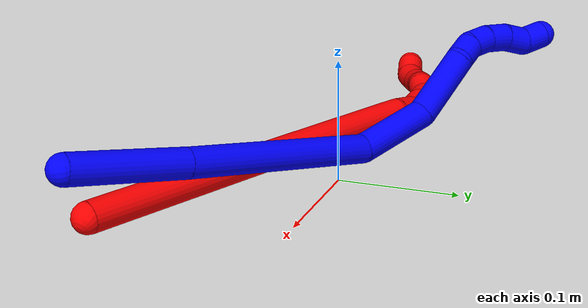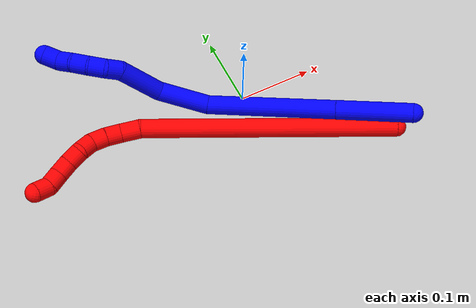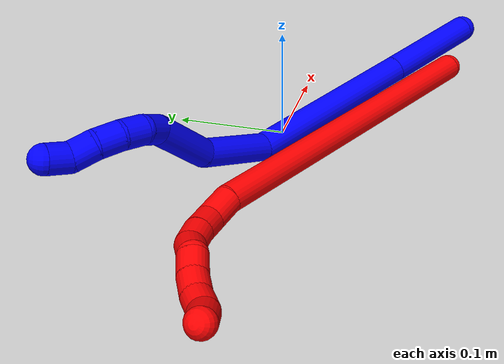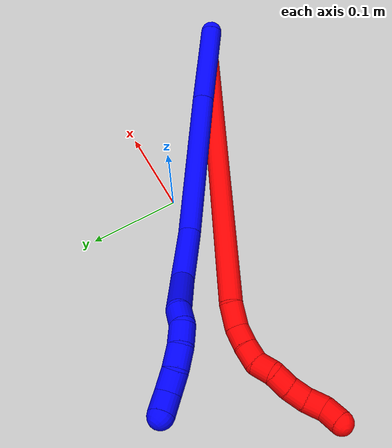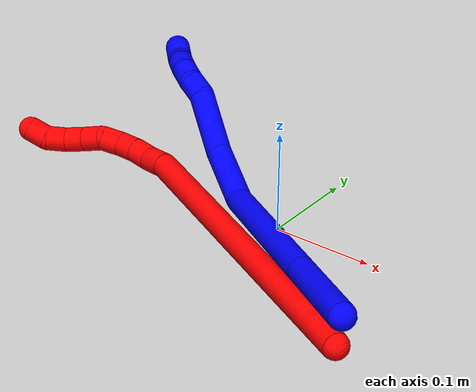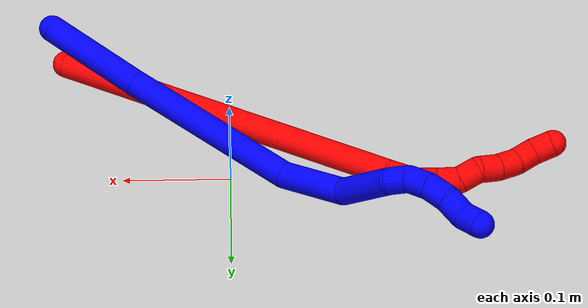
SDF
<sdf version="1.7">
 <world name="default">
  <model name="1">
   <static>0</static>
   <link name="1">
    <collision name="collision-cylinder-e_1_1_4">
     <pose>-0.027494 -0.000621 -0.040158 3.12613 -0.600292 -3.09164</pose>
     <geometry><cylinder><radius>0.0125</radius><length>0.097345</length></cylinder></geometry>
     <surface>
      <friction><ode><mu>1.16</mu><mu2>1.16</mu2><slip1>0</slip1><slip2>0</slip2></ode></friction>
      <contact><ode><kp>1e+06</kp><kd>1</kd><max_vel>0</max_vel><min_depth>0.001</min_depth></ode></contact>
     </surface>
    </collision>
    <visual name="visual-cylinder-e_1_1_4">
     <pose>-0.027494 -0.000621 -0.040158 3.12613 -0.600292 -3.09164</pose>
     <geometry><cylinder><radius>0.0125</radius><length>0.097345</length></cylinder></geometry>
     <material><ambient>0 0 1 1</ambient></material>
    </visual>
    <collision name="collision-cylinder-e_2_4_5">
     <pose>-0.103115 -1.5e-05 -0.149817 -3.12394 -0.605572 3.0851</pose>
     <geometry><cylinder><radius>0.0125</radius><length>0.169092</length></cylinder></geometry>
     <surface>
      <friction><ode><mu>1.16</mu><mu2>1.16</mu2><slip1>0</slip1><slip2>0</slip2></ode></friction>
      <contact><ode><kp>1e+06</kp><kd>1</kd><max_vel>0</max_vel><min_depth>0.001</min_depth></ode></contact>
     </surface>
    </collision>
    <visual name="visual-cylinder-e_2_4_5">
     <pose>-0.103115 -1.5e-05 -0.149817 -3.12394 -0.605572 3.0851</pose>
     <geometry><cylinder><radius>0.0125</radius><length>0.169092</length></cylinder></geometry>
     <material><ambient>0 0 1 1</ambient></material>
    </visual>
    <collision name="collision-cylinder-e_3_5_6">
     <pose>-0.163184 0.014 -0.248383 -2.7271 -0.359735 1.42603</pose>
     <geometry><cylinder><radius>0.0125</radius><length>0.06785</length></cylinder></geometry>
     <surface>
      <friction><ode><mu>1.16</mu><mu2>1.16</mu2><slip1>0</slip1><slip2>0</slip2></ode></friction>
      <contact><ode><kp>1e+06</kp><kd>1</kd><max_vel>0</max_vel><min_depth>0.001</min_depth></ode></contact>
     </surface>
    </collision>
    <visual name="visual-cylinder-e_3_5_6">
     <pose>-0.163184 0.014 -0.248383 -2.7271 -0.359735 1.42603</pose>
     <geometry><cylinder><radius>0.0125</radius><length>0.06785</length></cylinder></geometry>
     <material><ambient>0 0 1 1</ambient></material>
    </visual>
    <collision name="collision-cylinder-e_4_6_7">
     <pose>-0.17819 0.048775 -0.299094 -2.34836 -0.098973 0.235421</pose>
     <geometry><cylinder><radius>0.0125</radius><length>0.062012</length></cylinder></geometry>
     <surface>
      <friction><ode><mu>1.16</mu><mu2>1.16</mu2><slip1>0</slip1><slip2>0</slip2></ode></friction>
      <contact><ode><kp>1e+06</kp><kd>1</kd><max_vel>0</max_vel><min_depth>0.001</min_depth></ode></contact>
     </surface>
    </collision>
    <visual name="visual-cylinder-e_4_6_7">
     <pose>-0.17819 0.048775 -0.299094 -2.34836 -0.098973 0.235421</pose>
     <geometry><cylinder><radius>0.0125</radius><length>0.062012</length></cylinder></geometry>
     <material><ambient>0 0 1 1</ambient></material>
    </visual>
    <collision name="collision-cylinder-e_5_7_8">
     <pose>-0.185678 0.077115 -0.327224 -2.36643 -0.453462 1.02875</pose>
     <geometry><cylinder><radius>0.0125</radius><length>0.020196</length></cylinder></geometry>
     <surface>
      <friction><ode><mu>1.16</mu><mu2>1.16</mu2><slip1>0</slip1><slip2>0</slip2></ode></friction>
      <contact><ode><kp>1e+06</kp><kd>1</kd><max_vel>0</max_vel><min_depth>0.001</min_depth></ode></contact>
     </surface>
    </collision>
    <visual name="visual-cylinder-e_5_7_8">
     <pose>-0.185678 0.077115 -0.327224 -2.36643 -0.453462 1.02875</pose>
     <geometry><cylinder><radius>0.0125</radius><length>0.020196</length></cylinder></geometry>
     <material><ambient>0 0 1 1</ambient></material>
    </visual>
    <collision name="collision-cylinder-e_6_8_9">
     <pose>-0.194793 0.086236 -0.342417 -2.83385 -0.47427 2.00051</pose>
     <geometry><cylinder><radius>0.0125</radius><length>0.020546</length></cylinder></geometry>
     <surface>
      <friction><ode><mu>1.16</mu><mu2>1.16</mu2><slip1>0</slip1><slip2>0</slip2></ode></friction>
      <contact><ode><kp>1e+06</kp><kd>1</kd><max_vel>0</max_vel><min_depth>0.001</min_depth></ode></contact>
     </surface>
    </collision>
    <visual name="visual-cylinder-e_6_8_9">
     <pose>-0.194793 0.086236 -0.342417 -2.83385 -0.47427 2.00051</pose>
     <geometry><cylinder><radius>0.0125</radius><length>0.020546</length></cylinder></geometry>
     <material><ambient>0 0 1 1</ambient></material>
    </visual>
    <collision name="collision-cylinder-e_7_9_10">
     <pose>-0.204243 0.089437 -0.36063 -3.0961 -0.463833 2.9495</pose>
     <geometry><cylinder><radius>0.0125</radius><length>0.021275</length></cylinder></geometry>
     <surface>
      <friction><ode><mu>1.16</mu><mu2>1.16</mu2><slip1>0</slip1><slip2>0</slip2></ode></friction>
      <contact><ode><kp>1e+06</kp><kd>1</kd><max_vel>0</max_vel><min_depth>0.001</min_depth></ode></contact>
     </surface>
    </collision>
    <visual name="visual-cylinder-e_7_9_10">
     <pose>-0.204243 0.089437 -0.36063 -3.0961 -0.463833 2.9495</pose>
     <geometry><cylinder><radius>0.0125</radius><length>0.021275</length></cylinder></geometry>
     <material><ambient>0 0 1 1</ambient></material>
    </visual>
    <collision name="collision-cylinder-e_8_10_11">
     <pose>-0.213751 0.087593 -0.379315 2.89847 -0.465323 -2.18955</pose>
     <geometry><cylinder><radius>0.0125</radius><length>0.021168</length></cylinder></geometry>
     <surface>
      <friction><ode><mu>1.16</mu><mu2>1.16</mu2><slip1>0</slip1><slip2>0</slip2></ode></friction>
      <contact><ode><kp>1e+06</kp><kd>1</kd><max_vel>0</max_vel><min_depth>0.001</min_depth></ode></contact>
     </surface>
    </collision>
    <visual name="visual-cylinder-e_8_10_11">
     <pose>-0.213751 0.087593 -0.379315 2.89847 -0.465323 -2.18955</pose>
     <geometry><cylinder><radius>0.0125</radius><length>0.021168</length></cylinder></geometry>
     <material><ambient>0 0 1 1</ambient></material>
    </visual>
    <collision name="collision-cylinder-e_9_11_2">
     <pose>-0.221217 0.087834 -0.398061 -2.88418 -0.267983 1.61148</pose>
     <geometry><cylinder><radius>0.0125</radius><length>0.020516</length></cylinder></geometry>
     <surface>
      <friction><ode><mu>1.16</mu><mu2>1.16</mu2><slip1>0</slip1><slip2>0</slip2></ode></friction>
      <contact><ode><kp>1e+06</kp><kd>1</kd><max_vel>0</max_vel><min_depth>0.001</min_depth></ode></contact>
     </surface>
    </collision>
    <visual name="visual-cylinder-e_9_11_2">
     <pose>-0.221217 0.087834 -0.398061 -2.88418 -0.267983 1.61148</pose>
     <geometry><cylinder><radius>0.0125</radius><length>0.020516</length></cylinder></geometry>
     <material><ambient>0 0 1 1</ambient></material>
    </visual>
    <collision name="collision-sphere-2">
     <pose>-0.223933 0.090352 -0.407627 0 -0 0</pose>
     <geometry><sphere><radius>0.0125</radius></sphere></geometry>
     <surface>
      <friction><ode><mu>1.16</mu><mu2>1.16</mu2><slip1>0</slip1><slip2>0</slip2></ode></friction>
      <contact><ode><kp>1e+06</kp><kd>1</kd><max_vel>0</max_vel><min_depth>0.001</min_depth></ode></contact>
     </surface>
    </collision>
    <visual name="visual-sphere-2">
     <pose>-0.223933 0.090352 -0.407627 0 -0 0</pose>
     <geometry><sphere><radius>0.0125</radius></sphere></geometry>
     <material><ambient>0 0 1 1</ambient></material>
    </visual>
    <collision name="collision-sphere-11">
     <pose>-0.2185 0.085316 -0.388495 0 -0 0</pose>
     <geometry><sphere><radius>0.0125</radius></sphere></geometry>
     <surface>
      <friction><ode><mu>1.16</mu><mu2>1.16</mu2><slip1>0</slip1><slip2>0</slip2></ode></friction>
      <contact><ode><kp>1e+06</kp><kd>1</kd><max_vel>0</max_vel><min_depth>0.001</min_depth></ode></contact>
     </surface>
    </collision>
    <visual name="visual-sphere-11">
     <pose>-0.2185 0.085316 -0.388495 0 -0 0</pose>
     <geometry><sphere><radius>0.0125</radius></sphere></geometry>
     <material><ambient>0 0 1 1</ambient></material>
    </visual>
    <collision name="collision-sphere-10">
     <pose>-0.209002 0.08987 -0.370134 0 -0 0</pose>
     <geometry><sphere><radius>0.0125</radius></sphere></geometry>
     <surface>
      <friction><ode><mu>1.16</mu><mu2>1.16</mu2><slip1>0</slip1><slip2>0</slip2></ode></friction>
      <contact><ode><kp>1e+06</kp><kd>1</kd><max_vel>0</max_vel><min_depth>0.001</min_depth></ode></contact>
     </surface>
    </collision>
    <visual name="visual-sphere-10">
     <pose>-0.209002 0.08987 -0.370134 0 -0 0</pose>
     <geometry><sphere><radius>0.0125</radius></sphere></geometry>
     <material><ambient>0 0 1 1</ambient></material>
    </visual>
    <collision name="collision-sphere-9">
     <pose>-0.199484 0.089005 -0.351127 0 -0 0</pose>
     <geometry><sphere><radius>0.0125</radius></sphere></geometry>
     <surface>
      <friction><ode><mu>1.16</mu><mu2>1.16</mu2><slip1>0</slip1><slip2>0</slip2></ode></friction>
      <contact><ode><kp>1e+06</kp><kd>1</kd><max_vel>0</max_vel><min_depth>0.001</min_depth></ode></contact>
     </surface>
    </collision>
    <visual name="visual-sphere-9">
     <pose>-0.199484 0.089005 -0.351127 0 -0 0</pose>
     <geometry><sphere><radius>0.0125</radius></sphere></geometry>
     <material><ambient>0 0 1 1</ambient></material>
    </visual>
    <collision name="collision-sphere-4">
     <pose>-0.054988 -0.001242 -0.080316 0 -0 0</pose>
     <geometry><sphere><radius>0.0125</radius></sphere></geometry>
     <surface>
      <friction><ode><mu>1.16</mu><mu2>1.16</mu2><slip1>0</slip1><slip2>0</slip2></ode></friction>
      <contact><ode><kp>1e+06</kp><kd>1</kd><max_vel>0</max_vel><min_depth>0.001</min_depth></ode></contact>
     </surface>
    </collision>
    <visual name="visual-sphere-4">
     <pose>-0.054988 -0.001242 -0.080316 0 -0 0</pose>
     <geometry><sphere><radius>0.0125</radius></sphere></geometry>
     <material><ambient>0 0 1 1</ambient></material>
    </visual>
    <collision name="collision-sphere-1">
     <geometry><sphere><radius>0.0125</radius></sphere></geometry>
     <surface>
      <friction><ode><mu>1.16</mu><mu2>1.16</mu2><slip1>0</slip1><slip2>0</slip2></ode></friction>
      <contact><ode><kp>1e+06</kp><kd>1</kd><max_vel>0</max_vel><min_depth>0.001</min_depth></ode></contact>
     </surface>
    </collision>
    <visual name="visual-sphere-1">
     <geometry><sphere><radius>0.0125</radius></sphere></geometry>
     <material><ambient>0 0 1 1</ambient></material>
    </visual>
    <collision name="collision-sphere-8">
     <pose>-0.190101 0.083468 -0.333708 0 -0 0</pose>
     <geometry><sphere><radius>0.0125</radius></sphere></geometry>
     <surface>
      <friction><ode><mu>1.16</mu><mu2>1.16</mu2><slip1>0</slip1><slip2>0</slip2></ode></friction>
      <contact><ode><kp>1e+06</kp><kd>1</kd><max_vel>0</max_vel><min_depth>0.001</min_depth></ode></contact>
     </surface>
    </collision>
    <visual name="visual-sphere-8">
     <pose>-0.190101 0.083468 -0.333708 0 -0 0</pose>
     <geometry><sphere><radius>0.0125</radius></sphere></geometry>
     <material><ambient>0 0 1 1</ambient></material>
    </visual>
    <collision name="collision-sphere-5">
     <pose>-0.151241 0.001212 -0.219319 0 -0 0</pose>
     <geometry><sphere><radius>0.0125</radius></sphere></geometry>
     <surface>
      <friction><ode><mu>1.16</mu><mu2>1.16</mu2><slip1>0</slip1><slip2>0</slip2></ode></friction>
      <contact><ode><kp>1e+06</kp><kd>1</kd><max_vel>0</max_vel><min_depth>0.001</min_depth></ode></contact>
     </surface>
    </collision>
    <visual name="visual-sphere-5">
     <pose>-0.151241 0.001212 -0.219319 0 -0 0</pose>
     <geometry><sphere><radius>0.0125</radius></sphere></geometry>
     <material><ambient>0 0 1 1</ambient></material>
    </visual>
    <collision name="collision-sphere-6">
     <pose>-0.175126 0.026788 -0.277448 0 -0 0</pose>
     <geometry><sphere><radius>0.0125</radius></sphere></geometry>
     <surface>
      <friction><ode><mu>1.16</mu><mu2>1.16</mu2><slip1>0</slip1><slip2>0</slip2></ode></friction>
      <contact><ode><kp>1e+06</kp><kd>1</kd><max_vel>0</max_vel><min_depth>0.001</min_depth></ode></contact>
     </surface>
    </collision>
    <visual name="visual-sphere-6">
     <pose>-0.175126 0.026788 -0.277448 0 -0 0</pose>
     <geometry><sphere><radius>0.0125</radius></sphere></geometry>
     <material><ambient>0 0 1 1</ambient></material>
    </visual>
    <collision name="collision-sphere-7">
     <pose>-0.181254 0.070763 -0.32074 0 -0 0</pose>
     <geometry><sphere><radius>0.0125</radius></sphere></geometry>
     <surface>
      <friction><ode><mu>1.16</mu><mu2>1.16</mu2><slip1>0</slip1><slip2>0</slip2></ode></friction>
      <contact><ode><kp>1e+06</kp><kd>1</kd><max_vel>0</max_vel><min_depth>0.001</min_depth></ode></contact>
     </surface>
    </collision>
    <visual name="visual-sphere-7">
     <pose>-0.181254 0.070763 -0.32074 0 -0 0</pose>
     <geometry><sphere><radius>0.0125</radius></sphere></geometry>
     <material><ambient>0 0 1 1</ambient></material>
    </visual>
    <inertial>
     <pose>-0.12679 0.025599 -0.204309 0 -0 0</pose>
     <mass>0.5</mass>
     <inertia>
      <ixx>-0.000347</ixx>
      <ixy>0</ixy>
      <ixz>0</ixz>
      <iyy>0.000536</iyy>
      <iyz>0</iyz>
      <izz>0.000229</izz>
     </inertia>
    </inertial>
   </link>
   <pose>0.166823 -0.145708 0.050951 1.73412 -0.495328 0.352187</pose>
  </model>
  <model name="2">
   <static>0</static>
   <link name="2">
    <collision name="collision-cylinder-e_1_1_4">
     <pose>-0.080131 0.049576 0.136875 -0.347501 -0.503177 0.090169</pose>
     <geometry><cylinder><radius>0.0125</radius><length>0.332347</length></cylinder></geometry>
     <surface>
      <friction><ode><mu>1.16</mu><mu2>1.16</mu2><slip1>0</slip1><slip2>0</slip2></ode></friction>
      <contact><ode><kp>1e+06</kp><kd>1</kd><max_vel>0</max_vel><min_depth>0.001</min_depth></ode></contact>
     </surface>
    </collision>
    <visual name="visual-cylinder-e_1_1_4">
     <pose>-0.080131 0.049576 0.136875 -0.347501 -0.503177 0.090169</pose>
     <geometry><cylinder><radius>0.0125</radius><length>0.332347</length></cylinder></geometry>
     <material><ambient>1 0 0 1</ambient></material>
    </visual>
    <collision name="collision-cylinder-e_2_4_5">
     <pose>-0.16881 0.101143 0.283802 -0.195548 -0.695318 0.071059</pose>
     <geometry><cylinder><radius>0.0125</radius><length>0.026689</length></cylinder></geometry>
     <surface>
      <friction><ode><mu>1.16</mu><mu2>1.16</mu2><slip1>0</slip1><slip2>0</slip2></ode></friction>
      <contact><ode><kp>1e+06</kp><kd>1</kd><max_vel>0</max_vel><min_depth>0.001</min_depth></ode></contact>
     </surface>
    </collision>
    <visual name="visual-cylinder-e_2_4_5">
     <pose>-0.16881 0.101143 0.283802 -0.195548 -0.695318 0.071059</pose>
     <geometry><cylinder><radius>0.0125</radius><length>0.026689</length></cylinder></geometry>
     <material><ambient>1 0 0 1</ambient></material>
    </visual>
    <collision name="collision-cylinder-e_3_5_6">
     <pose>-0.181832 0.102731 0.303229 0.043017 -0.444792 -0.009729</pose>
     <geometry><cylinder><radius>0.0125</radius><length>0.020793</length></cylinder></geometry>
     <surface>
      <friction><ode><mu>1.16</mu><mu2>1.16</mu2><slip1>0</slip1><slip2>0</slip2></ode></friction>
      <contact><ode><kp>1e+06</kp><kd>1</kd><max_vel>0</max_vel><min_depth>0.001</min_depth></ode></contact>
     </surface>
    </collision>
    <visual name="visual-cylinder-e_3_5_6">
     <pose>-0.181832 0.102731 0.303229 0.043017 -0.444792 -0.009729</pose>
     <geometry><cylinder><radius>0.0125</radius><length>0.020793</length></cylinder></geometry>
     <material><ambient>1 0 0 1</ambient></material>
    </visual>
    <collision name="collision-cylinder-e_4_6_7">
     <pose>-0.191164 0.100769 0.321298 0.177381 -0.502972 -0.045686</pose>
     <geometry><cylinder><radius>0.0125</radius><length>0.020157</length></cylinder></geometry>
     <surface>
      <friction><ode><mu>1.16</mu><mu2>1.16</mu2><slip1>0</slip1><slip2>0</slip2></ode></friction>
      <contact><ode><kp>1e+06</kp><kd>1</kd><max_vel>0</max_vel><min_depth>0.001</min_depth></ode></contact>
     </surface>
    </collision>
    <visual name="visual-cylinder-e_4_6_7">
     <pose>-0.191164 0.100769 0.321298 0.177381 -0.502972 -0.045686</pose>
     <geometry><cylinder><radius>0.0125</radius><length>0.020157</length></cylinder></geometry>
     <material><ambient>1 0 0 1</ambient></material>
    </visual>
    <collision name="collision-cylinder-e_5_7_8">
     <pose>-0.198281 0.093737 0.338049 0.596606 -0.22788 -0.070344</pose>
     <geometry><cylinder><radius>0.0125</radius><length>0.020003</length></cylinder></geometry>
     <surface>
      <friction><ode><mu>1.16</mu><mu2>1.16</mu2><slip1>0</slip1><slip2>0</slip2></ode></friction>
      <contact><ode><kp>1e+06</kp><kd>1</kd><max_vel>0</max_vel><min_depth>0.001</min_depth></ode></contact>
     </surface>
    </collision>
    <visual name="visual-cylinder-e_5_7_8">
     <pose>-0.198281 0.093737 0.338049 0.596606 -0.22788 -0.070344</pose>
     <geometry><cylinder><radius>0.0125</radius><length>0.020003</length></cylinder></geometry>
     <material><ambient>1 0 0 1</ambient></material>
    </visual>
    <collision name="collision-cylinder-e_6_8_9">
     <pose>-0.207145 0.083949 0.35226 0.611589 -0.721109 -0.236943</pose>
     <geometry><cylinder><radius>0.0125</radius><length>0.020006</length></cylinder></geometry>
     <surface>
      <friction><ode><mu>1.16</mu><mu2>1.16</mu2><slip1>0</slip1><slip2>0</slip2></ode></friction>
      <contact><ode><kp>1e+06</kp><kd>1</kd><max_vel>0</max_vel><min_depth>0.001</min_depth></ode></contact>
     </surface>
    </collision>
    <visual name="visual-cylinder-e_6_8_9">
     <pose>-0.207145 0.083949 0.35226 0.611589 -0.721109 -0.236943</pose>
     <geometry><cylinder><radius>0.0125</radius><length>0.020006</length></cylinder></geometry>
     <material><ambient>1 0 0 1</ambient></material>
    </visual>
    <collision name="collision-cylinder-e_7_9_10">
     <pose>-0.219209 0.073955 0.364573 0.744793 -0.577413 -0.231001</pose>
     <geometry><cylinder><radius>0.0125</radius><length>0.020003</length></cylinder></geometry>
     <surface>
      <friction><ode><mu>1.16</mu><mu2>1.16</mu2><slip1>0</slip1><slip2>0</slip2></ode></friction>
      <contact><ode><kp>1e+06</kp><kd>1</kd><max_vel>0</max_vel><min_depth>0.001</min_depth></ode></contact>
     </surface>
    </collision>
    <visual name="visual-cylinder-e_7_9_10">
     <pose>-0.219209 0.073955 0.364573 0.744793 -0.577413 -0.231001</pose>
     <geometry><cylinder><radius>0.0125</radius><length>0.020003</length></cylinder></geometry>
     <material><ambient>1 0 0 1</ambient></material>
    </visual>
    <collision name="collision-cylinder-e_8_10_11">
     <pose>-0.228115 0.06157 0.377305 0.79552 -0.3519 -0.149121</pose>
     <geometry><cylinder><radius>0.0125</radius><length>0.020001</length></cylinder></geometry>
     <surface>
      <friction><ode><mu>1.16</mu><mu2>1.16</mu2><slip1>0</slip1><slip2>0</slip2></ode></friction>
      <contact><ode><kp>1e+06</kp><kd>1</kd><max_vel>0</max_vel><min_depth>0.001</min_depth></ode></contact>
     </surface>
    </collision>
    <visual name="visual-cylinder-e_8_10_11">
     <pose>-0.228115 0.06157 0.377305 0.79552 -0.3519 -0.149121</pose>
     <geometry><cylinder><radius>0.0125</radius><length>0.020001</length></cylinder></geometry>
     <material><ambient>1 0 0 1</ambient></material>
    </visual>
    <collision name="collision-cylinder-e_9_11_2">
     <pose>-0.233392 0.051394 0.393074 0.360798 -0.183963 -0.033643</pose>
     <geometry><cylinder><radius>0.0125</radius><length>0.020001</length></cylinder></geometry>
     <surface>
      <friction><ode><mu>1.16</mu><mu2>1.16</mu2><slip1>0</slip1><slip2>0</slip2></ode></friction>
      <contact><ode><kp>1e+06</kp><kd>1</kd><max_vel>0</max_vel><min_depth>0.001</min_depth></ode></contact>
     </surface>
    </collision>
    <visual name="visual-cylinder-e_9_11_2">
     <pose>-0.233392 0.051394 0.393074 0.360798 -0.183963 -0.033643</pose>
     <geometry><cylinder><radius>0.0125</radius><length>0.020001</length></cylinder></geometry>
     <material><ambient>1 0 0 1</ambient></material>
    </visual>
    <collision name="collision-sphere-2">
     <pose>-0.235221 0.047923 0.402272 0 -0 0</pose>
     <geometry><sphere><radius>0.0125</radius></sphere></geometry>
     <surface>
      <friction><ode><mu>1.16</mu><mu2>1.16</mu2><slip1>0</slip1><slip2>0</slip2></ode></friction>
      <contact><ode><kp>1e+06</kp><kd>1</kd><max_vel>0</max_vel><min_depth>0.001</min_depth></ode></contact>
     </surface>
    </collision>
    <visual name="visual-sphere-2">
     <pose>-0.235221 0.047923 0.402272 0 -0 0</pose>
     <geometry><sphere><radius>0.0125</radius></sphere></geometry>
     <material><ambient>1 0 0 1</ambient></material>
    </visual>
    <collision name="collision-sphere-11">
     <pose>-0.231562 0.054865 0.383875 0 -0 0</pose>
     <geometry><sphere><radius>0.0125</radius></sphere></geometry>
     <surface>
      <friction><ode><mu>1.16</mu><mu2>1.16</mu2><slip1>0</slip1><slip2>0</slip2></ode></friction>
      <contact><ode><kp>1e+06</kp><kd>1</kd><max_vel>0</max_vel><min_depth>0.001</min_depth></ode></contact>
     </surface>
    </collision>
    <visual name="visual-sphere-11">
     <pose>-0.231562 0.054865 0.383875 0 -0 0</pose>
     <geometry><sphere><radius>0.0125</radius></sphere></geometry>
     <material><ambient>1 0 0 1</ambient></material>
    </visual>
    <collision name="collision-sphere-10">
     <pose>-0.224668 0.068275 0.370734 0 -0 0</pose>
     <geometry><sphere><radius>0.0125</radius></sphere></geometry>
     <surface>
      <friction><ode><mu>1.16</mu><mu2>1.16</mu2><slip1>0</slip1><slip2>0</slip2></ode></friction>
      <contact><ode><kp>1e+06</kp><kd>1</kd><max_vel>0</max_vel><min_depth>0.001</min_depth></ode></contact>
     </surface>
    </collision>
    <visual name="visual-sphere-10">
     <pose>-0.224668 0.068275 0.370734 0 -0 0</pose>
     <geometry><sphere><radius>0.0125</radius></sphere></geometry>
     <material><ambient>1 0 0 1</ambient></material>
    </visual>
    <collision name="collision-sphere-9">
     <pose>-0.213749 0.079635 0.358412 0 -0 0</pose>
     <geometry><sphere><radius>0.0125</radius></sphere></geometry>
     <surface>
      <friction><ode><mu>1.16</mu><mu2>1.16</mu2><slip1>0</slip1><slip2>0</slip2></ode></friction>
      <contact><ode><kp>1e+06</kp><kd>1</kd><max_vel>0</max_vel><min_depth>0.001</min_depth></ode></contact>
     </surface>
    </collision>
    <visual name="visual-sphere-9">
     <pose>-0.213749 0.079635 0.358412 0 -0 0</pose>
     <geometry><sphere><radius>0.0125</radius></sphere></geometry>
     <material><ambient>1 0 0 1</ambient></material>
    </visual>
    <collision name="collision-sphere-4">
     <pose>-0.160261 0.099152 0.273751 0 -0 0</pose>
     <geometry><sphere><radius>0.0125</radius></sphere></geometry>
     <surface>
      <friction><ode><mu>1.16</mu><mu2>1.16</mu2><slip1>0</slip1><slip2>0</slip2></ode></friction>
      <contact><ode><kp>1e+06</kp><kd>1</kd><max_vel>0</max_vel><min_depth>0.001</min_depth></ode></contact>
     </surface>
    </collision>
    <visual name="visual-sphere-4">
     <pose>-0.160261 0.099152 0.273751 0 -0 0</pose>
     <geometry><sphere><radius>0.0125</radius></sphere></geometry>
     <material><ambient>1 0 0 1</ambient></material>
    </visual>
    <collision name="collision-sphere-1">
     <geometry><sphere><radius>0.0125</radius></sphere></geometry>
     <surface>
      <friction><ode><mu>1.16</mu><mu2>1.16</mu2><slip1>0</slip1><slip2>0</slip2></ode></friction>
      <contact><ode><kp>1e+06</kp><kd>1</kd><max_vel>0</max_vel><min_depth>0.001</min_depth></ode></contact>
     </surface>
    </collision>
    <visual name="visual-sphere-1">
     <geometry><sphere><radius>0.0125</radius></sphere></geometry>
     <material><ambient>1 0 0 1</ambient></material>
    </visual>
    <collision name="collision-sphere-8">
     <pose>-0.200541 0.088263 0.346109 0 -0 0</pose>
     <geometry><sphere><radius>0.0125</radius></sphere></geometry>
     <surface>
      <friction><ode><mu>1.16</mu><mu2>1.16</mu2><slip1>0</slip1><slip2>0</slip2></ode></friction>
      <contact><ode><kp>1e+06</kp><kd>1</kd><max_vel>0</max_vel><min_depth>0.001</min_depth></ode></contact>
     </surface>
    </collision>
    <visual name="visual-sphere-8">
     <pose>-0.200541 0.088263 0.346109 0 -0 0</pose>
     <geometry><sphere><radius>0.0125</radius></sphere></geometry>
     <material><ambient>1 0 0 1</ambient></material>
    </visual>
    <collision name="collision-sphere-5">
     <pose>-0.177359 0.103134 0.293853 0 -0 0</pose>
     <geometry><sphere><radius>0.0125</radius></sphere></geometry>
     <surface>
      <friction><ode><mu>1.16</mu><mu2>1.16</mu2><slip1>0</slip1><slip2>0</slip2></ode></friction>
      <contact><ode><kp>1e+06</kp><kd>1</kd><max_vel>0</max_vel><min_depth>0.001</min_depth></ode></contact>
     </surface>
    </collision>
    <visual name="visual-sphere-5">
     <pose>-0.177359 0.103134 0.293853 0 -0 0</pose>
     <geometry><sphere><radius>0.0125</radius></sphere></geometry>
     <material><ambient>1 0 0 1</ambient></material>
    </visual>
    <collision name="collision-sphere-6">
     <pose>-0.186306 0.102327 0.312606 0 -0 0</pose>
     <geometry><sphere><radius>0.0125</radius></sphere></geometry>
     <surface>
      <friction><ode><mu>1.16</mu><mu2>1.16</mu2><slip1>0</slip1><slip2>0</slip2></ode></friction>
      <contact><ode><kp>1e+06</kp><kd>1</kd><max_vel>0</max_vel><min_depth>0.001</min_depth></ode></contact>
     </surface>
    </collision>
    <visual name="visual-sphere-6">
     <pose>-0.186306 0.102327 0.312606 0 -0 0</pose>
     <geometry><sphere><radius>0.0125</radius></sphere></geometry>
     <material><ambient>1 0 0 1</ambient></material>
    </visual>
    <collision name="collision-sphere-7">
     <pose>-0.196022 0.099211 0.329989 0 -0 0</pose>
     <geometry><sphere><radius>0.0125</radius></sphere></geometry>
     <surface>
      <friction><ode><mu>1.16</mu><mu2>1.16</mu2><slip1>0</slip1><slip2>0</slip2></ode></friction>
      <contact><ode><kp>1e+06</kp><kd>1</kd><max_vel>0</max_vel><min_depth>0.001</min_depth></ode></contact>
     </surface>
    </collision>
    <visual name="visual-sphere-7">
     <pose>-0.196022 0.099211 0.329989 0 -0 0</pose>
     <geometry><sphere><radius>0.0125</radius></sphere></geometry>
     <material><ambient>1 0 0 1</ambient></material>
    </visual>
    <inertial>
     <pose>-0.120993 0.061273 0.204712 0 -0 0</pose>
     <mass>0.5</mass>
     <inertia>
      <ixx>0.002915</ixx>
      <ixy>0</ixy>
      <ixz>0</ixz>
      <iyy>0.003179</iyy>
      <iyz>0</iyz>
      <izz>0.000606</izz>
     </inertia>
    </inertial>
   </link>
   <pose>0.155756 -0.135963 0.011494 -0.027209 -1.02216 -0.120982</pose>
  </model>
 </world>
</sdf>
